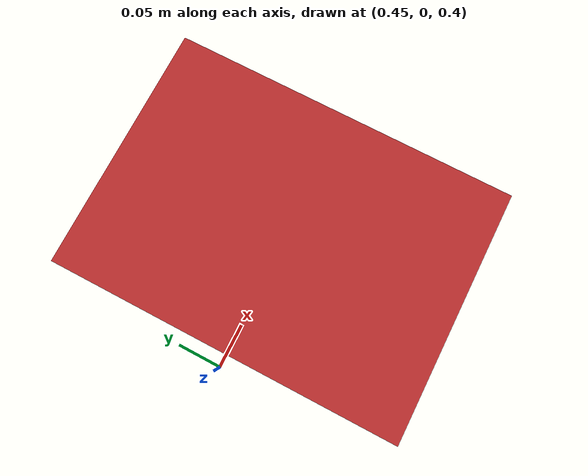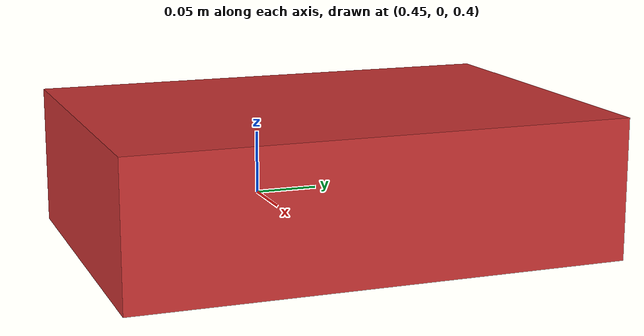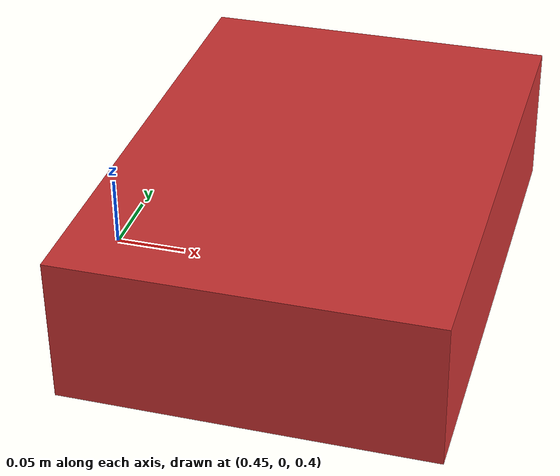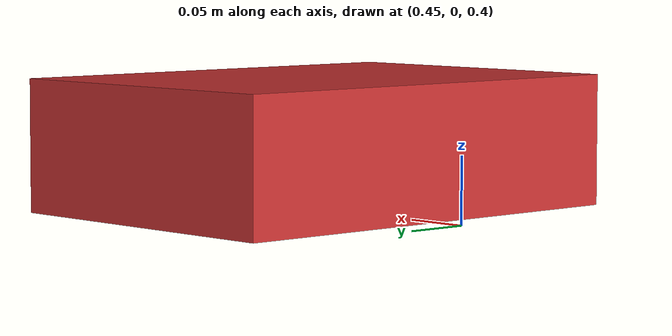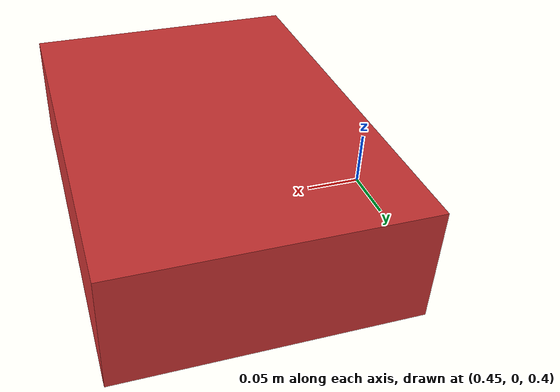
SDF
<?xml version="1.0" ?>
<sdf version="1.6">
  <model name="top_fixed_box">
    <static>true</static>
    <link name="box_link">
      <visual name="visual">
        <geometry>
          <box>
            <size>0.25 0.35 0.1</size>
          </box>
        </geometry>
        <material>
          <diffuse>0.8 0.2 0.2 1.0</diffuse>   <!-- Red -->
          <specular>0.4 0.1 0.1 1.0</specular>
        </material>
      </visual>
      <collision name="collision">
        <geometry>
          <box>
            <size>0.25 0.35 0.1</size>
          </box>
        </geometry>
        <surface>
          <friction>
            <ode>
              <mu>0.8</mu>
              <mu2>0.8</mu2>
            </ode>
          </friction>
        </surface>
      </collision>
      <!-- Positioned above the movable box -->
      <pose>0.6 0.0 0.45 0 0 0</pose>
    </link>
  </model>
</sdf>
